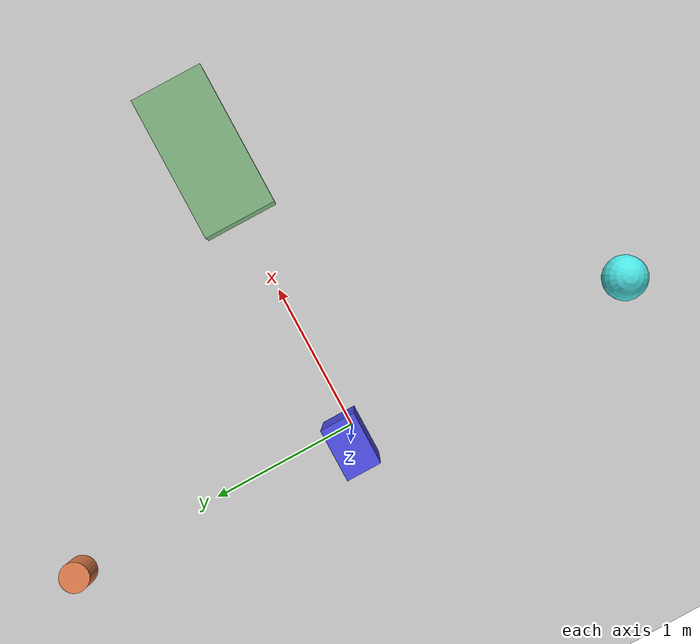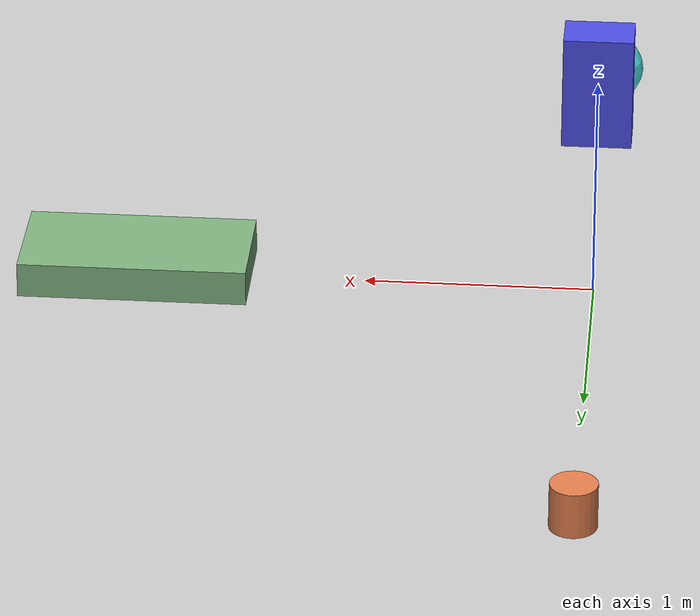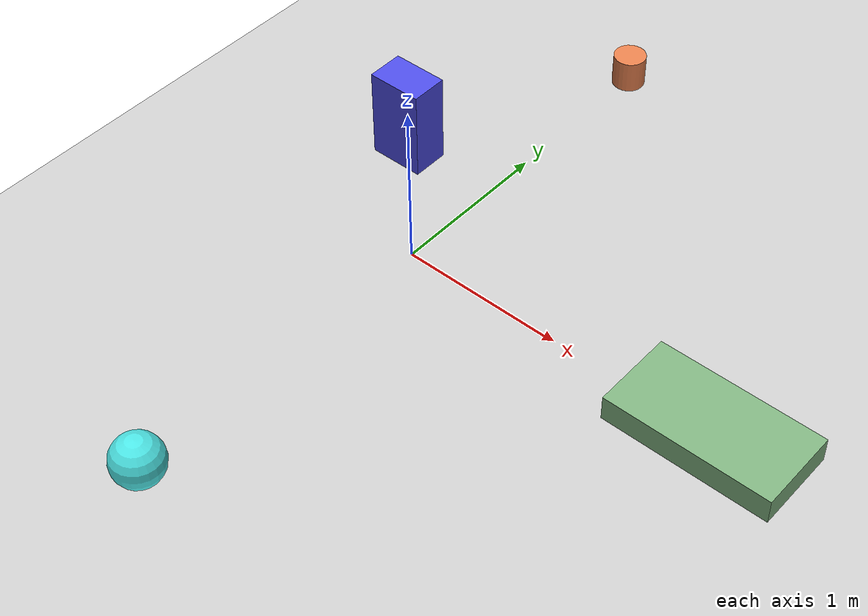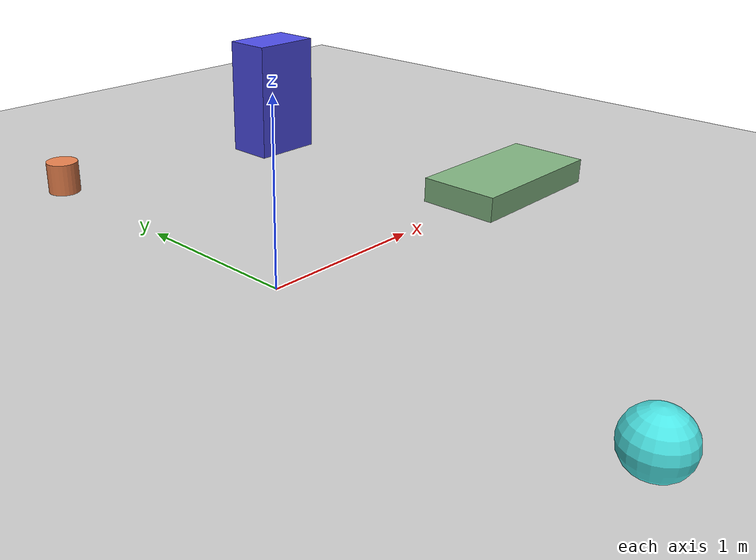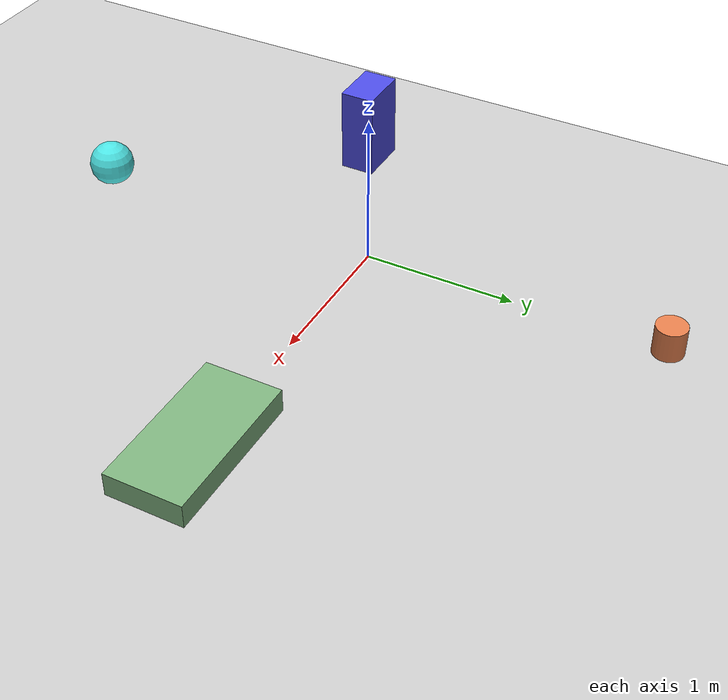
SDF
<sdf version="1.7">
 <world name="humanoid_validation">
  <include><uri>model://ground_plane</uri></include>
  <include><uri>model://sun</uri></include>
  <physics type="ode">
   <gravity>0 0 -9.81</gravity>
   <max_step_size>0.001</max_step_size>
   <real_time_factor>1.0</real_time_factor>
   <real_time_update_rate>1000</real_time_update_rate>
  </physics>
  <model name="validation_steps">
   <pose>2 0 0 0 0 0</pose>
   <link name="link">
    <inertial>
     <mass>5.0</mass>
     <inertia><ixx>0.5</ixx><ixy>0.0</ixy><ixz>0.0</ixz><iyy>0.5</iyy><iyz>0.0</iyz><izz>0.5</izz></inertia>
    </inertial>
    <visual name="visual">
     <geometry><box><size>1.0 0.5 0.3</size></box></geometry>
     <material>
      <ambient>0.4 0.6 0.4 1</ambient>
      <diffuse>0.5 0.7 0.5 1</diffuse>
      <specular>0.1 0.1 0.1 1</specular>
     </material>
    </visual>
    <collision name="collision"><geometry><box><size>1.0 0.5 0.3</size></box></geometry></collision>
   </link>
  </model>
  <model name="obstacle_1">
   <pose>0 2 0.1 0 0 0</pose>
   <link name="link">
    <inertial>
     <mass>0.5</mass>
     <inertia><ixx>0.01</ixx><ixy>0.0</ixy><ixz>0.0</ixz><iyy>0.01</iyy><iyz>0.0</iyz><izz>0.01</izz></inertia>
    </inertial>
    <visual name="visual">
     <geometry><cylinder><radius>0.1</radius><length>0.2</length></cylinder></geometry>
     <material>
      <ambient>0.8 0.4 0.2 1</ambient>
      <diffuse>0.9 0.5 0.3 1</diffuse>
      <specular>0.2 0.1 0.1 1</specular>
     </material>
    </visual>
    <collision name="collision">
     <geometry><cylinder><radius>0.1</radius><length>0.2</length></cylinder></geometry>
    </collision>
   </link>
  </model>
  <model name="obstacle_2">
   <pose>0 -2 0.1 0 0 0</pose>
   <link name="link">
    <inertial>
     <mass>0.5</mass>
     <inertia><ixx>0.01</ixx><ixy>0.0</ixy><ixz>0.0</ixz><iyy>0.01</iyy><iyz>0.0</iyz><izz>0.01</izz></inertia>
    </inertial>
    <visual name="visual">
     <geometry><sphere><radius>0.15</radius></sphere></geometry>
     <material>
      <ambient>0.2 0.8 0.8 1</ambient>
      <diffuse>0.3 0.9 0.9 1</diffuse>
      <specular>0.1 0.2 0.2 1</specular>
     </material>
    </visual>
    <collision name="collision"><geometry><sphere><radius>0.15</radius></sphere></geometry></collision>
   </link>
  </model>
  <include><uri>model://sensor_equipped_robot</uri><pose>0 0 1 0 0 0</pose></include>
  <light name="validation_light_1" type="point">
   <pose>3 3 5 0 0 0</pose>
   <diffuse>0.5 0.5 0.5 1</diffuse>
   <specular>0.5 0.5 0.5 1</specular>
   <attenuation>
    <range>20</range>
    <constant>0.9</constant>
    <linear>0.01</linear>
    <quadratic>0.001</quadratic>
   </attenuation>
  </light>
  <light name="validation_light_2" type="point">
   <pose>-3 -3 5 0 0 0</pose>
   <diffuse>0.5 0.5 0.5 1</diffuse>
   <specular>0.5 0.5 0.5 1</specular>
   <attenuation>
    <range>20</range>
    <constant>0.9</constant>
    <linear>0.01</linear>
    <quadratic>0.001</quadratic>
   </attenuation>
  </light>
 </world>
</sdf>

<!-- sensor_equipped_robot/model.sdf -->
<sdf version="1.7">
  <model name="sensor_equipped_robot">
    <pose>0 0 1 0 0 0</pose>

    <!-- Main body/chest link with sensors -->
    <link name="base_link">
      <inertial>
        <mass>5.0</mass>
        <inertia>
          <ixx>0.1</ixx>
          <ixy>0.0</ixy>
          <ixz>0.0</ixz>
          <iyy>0.1</iyy>
          <iyz>0.0</iyz>
          <izz>0.1</izz>
        </inertia>
      </inertial>

      <visual name="visual">
        <geometry>
          <box>
            <size>0.3 0.2 0.5</size>
          </box>
        </geometry>
        <material>
          <ambient>0.2 0.2 0.8 1</ambient>
          <diffuse>0.3 0.3 0.9 1</diffuse>
          <specular>0.1 0.1 0.1 1</specular>
        </material>
      </visual>

      <collision name="collision">
        <geometry>
          <box>
            <size>0.3 0.2 0.5</size>
          </box>
        </geometry>
      </collision>

      <!-- IMU Sensor -->
      <sensor name="imu_sensor" type="imu">
        <always_on>true</always_on>
        <update_rate>100</update_rate>
        <visualize>false</visualize>
        <topic>imu/data</topic>
        <plugin filename="libgazebo_ros_imu.so" name="imu_plugin">
          <topicName>imu/data</topicName>
          <bodyName>base_link</bodyName>
          <serviceName>imu/service</serviceName>
          <gaussianNoise>0.001</gaussianNoise>
          <updateRateHZ>100.0</updateRateHZ>
        </plugin>
      </sensor>
    </link>

    <!-- Head link with camera -->
    <link name="head">
      <inertial>
        <mass>1.0</mass>
        <inertia>
          <ixx>0.01</ixx>
          <ixy>0.0</ixy>
          <ixz>0.0</ixz>
          <iyy>0.01</iyy>
          <iyz>0.0</iyz>
          <izz>0.01</izz>
        </inertia>
      </inertial>

      <visual name="visual">
        <geometry>
          <sphere>
            <radius>0.1</radius>
          </sphere>
        </geometry>
        <material>
          <ambient>0.8 0.8 0.8 1</ambient>
          <diffuse>0.9 0.9 0.9 1</diffuse>
          <specular>0.2 0.2 0.2 1</specular>
        </material>
      </visual>

      <collision name="collision">
        <geometry>
          <sphere>
            <radius>0.1</radius>
          </sphere>
        </geometry>
      </collision>

      <!-- Depth Camera Sensor -->
      <sensor name="depth_camera" type="depth">
        <always_on>true</always_on>
        <update_rate>15</update_rate>
        <visualize>true</visualize>
        <topic>depth_camera</topic>
        <camera name="depth_cam">
          <horizontal_fov>1.047</horizontal_fov>
          <image>
            <width>640</width>
            <height>480</height>
            <format>R8G8B8</format>
          </image>
          <clip>
            <near>0.1</near>
            <far>10.0</far>
          </clip>
        </camera>
        <plugin filename="libgazebo_ros_openni_kinect.so" name="camera_controller">
          <alwaysOn>true</alwaysOn>
          <updateRate>15.0</updateRate>
          <topicName>depth_camera/image_raw</topicName>
          <depthImageTopicName>depth_camera/depth/image_raw</depthImageTopicName>
          <cameraInfoTopicName>depth_camera/camera_info</cameraInfoTopicName>
          <frameName>depth_camera_frame</frameName>
          <baseline>0.1</baseline>
          <distortion_k1>0.0</distortion_k1>
          <distortion_k2>0.0</distortion_k2>
          <distortion_k3>0.0</distortion_k3>
          <distortion_t1>0.0</distortion_t1>
          <distortion_t2>0.0</distortion_t2>
          <pointCloudCutoff>0.1</pointCloudCutoff>
          <pointCloudCutoffMax>3.0</pointCloudCutoffMax>
          <CxPrime>0.0</CxPrime>
          <Cx>0.0</Cx>
          <Cy>0.0</Cy>
          <focalLength>0.0</focalLength>
          <hackBaseline>0.0</hackBaseline>
        </plugin>
      </sensor>
    </link>

    <!-- Joint connecting head to body -->
    <joint name="neck_joint" type="revolute">
      <parent>base_link</parent>
      <child>head</child>
      <axis>
        <xyz>0 0 1</xyz>
        <limit>
          <lower>-1.57</lower>
          <upper>1.57</upper>
          <effort>10.0</effort>
          <velocity>1.0</velocity>
        </limit>
      </axis>
      <pose>0 0 0.4 0 0 0</pose>
    </joint>

    <!-- LiDAR Mount -->
    <link name="lidar_mount">
      <inertial>
        <mass>0.1</mass>
        <inertia>
          <ixx>0.001</ixx>
          <ixy>0.0</ixy>
          <ixz>0.0</ixz>
          <iyy>0.001</iyy>
          <iyz>0.0</iyz>
          <izz>0.001</izz>
        </inertia>
      </inertial>

      <visual name="visual">
        <geometry>
          <cylinder>
            <radius>0.02</radius>
            <length>0.05</length>
          </cylinder>
        </geometry>
        <material>
          <ambient>0.1 0.1 0.1 1</ambient>
          <diffuse>0.2 0.2 0.2 1</diffuse>
          <specular>0.5 0.5 0.5 1</specular>
        </material>
      </visual>

      <collision name="collision">
        <geometry>
          <cylinder>
            <radius>0.02</radius>
            <length>0.05</length>
          </cylinder>
        </geometry>
      </collision>

      <!-- LiDAR Sensor -->
      <sensor name="lidar" type="ray">
        <pose>0 0 0.025 0 0 0</pose>
        <visualize>true</visualize>
        <update_rate>10</update_rate>
        <ray>
          <scan>
            <horizontal>
              <samples>720</samples>
              <resolution>1</resolution>
              <min_angle>-3.14159</min_angle>
              <max_angle>3.14159</max_angle>
            </horizontal>
          </scan>
          <range>
            <min>0.1</min>
            <max>30.0</max>
            <resolution>0.01</resolution>
          </range>
          <noise>
            <type>gaussian</type>
            <mean>0.0</mean>
            <stddev>0.01</stddev>
          </noise>
        </ray>
        <plugin name="lidar_controller" filename="libgazebo_ros_ray_sensor.so">
          <topic_name>/laser_scan</topic_name>
          <frame_name>lidar_link</frame_name>
          <min_range>0.1</min_range>
          <max_range>30.0</max_range>
          <update_rate>10.0</update_rate>
        </plugin>
      </sensor>
    </link>

    <joint name="lidar_joint" type="fixed">
      <parent>base_link</parent>
      <child>lidar_mount</child>
      <pose>0.15 0 0.1 0 0 0</pose>
    </joint>

    <!-- Left leg -->
    <link name="left_thigh">
      <inertial>
        <mass>2.0</mass>
        <inertia>
          <ixx>0.02</ixx>
          <ixy>0.0</ixy>
          <ixz>0.0</ixz>
          <iyy>0.02</iyy>
          <iyz>0.0</iyz>
          <izz>0.005</izz>
        </inertia>
      </inertial>

      <visual name="visual">
        <geometry>
          <cylinder>
            <radius>0.05</radius>
            <length>0.4</length>
          </cylinder>
        </geometry>
        <material>
          <ambient>0.8 0.2 0.2 1</ambient>
          <diffuse>0.9 0.3 0.3 1</diffuse>
          <specular>0.2 0.1 0.1 1</specular>
        </material>
      </visual>

      <collision name="collision">
        <geometry>
          <cylinder>
            <radius>0.05</radius>
            <length>0.4</length>
          </cylinder>
        </geometry>
      </collision>
    </link>

    <joint name="left_hip" type="revolute">
      <parent>base_link</parent>
      <child>left_thigh</child>
      <axis>
        <xyz>0 1 0</xyz>
        <limit>
          <lower>-1.57</lower>
          <upper>1.57</upper>
          <effort>20.0</effort>
          <velocity>2.0</velocity>
        </limit>
      </axis>
      <pose>-0.1 0 -0.25 0 0 0</pose>
    </joint>

    <!-- Right leg -->
    <link name="right_thigh">
      <inertial>
        <mass>2.0</mass>
        <inertia>
          <ixx>0.02</ixx>
          <ixy>0.0</ixy>
          <ixz>0.0</ixz>
          <iyy>0.02</iyy>
          <iyz>0.0</iyz>
          <izz>0.005</izz>
        </inertia>
      </inertial>

      <visual name="visual">
        <geometry>
          <cylinder>
            <radius>0.05</radius>
            <length>0.4</length>
          </cylinder>
        </geometry>
        <material>
          <ambient>0.8 0.2 0.2 1</ambient>
          <diffuse>0.9 0.3 0.3 1</diffuse>
          <specular>0.2 0.1 0.1 1</specular>
        </material>
      </visual>

      <collision name="collision">
        <geometry>
          <cylinder>
            <radius>0.05</radius>
            <length>0.4</length>
          </cylinder>
        </geometry>
      </collision>
    </link>

    <joint name="right_hip" type="revolute">
      <parent>base_link</parent>
      <child>right_thigh</child>
      <axis>
        <xyz>0 1 0</xyz>
        <limit>
          <lower>-1.57</lower>
          <upper>1.57</upper>
          <effort>20.0</effort>
          <velocity>2.0</velocity>
        </limit>
      </axis>
      <pose>0.1 0 -0.25 0 0 0</pose>
    </joint>

    <!-- Physics properties -->
    <static>false</static>
    <allow_auto_disable>true</allow_auto_disable>
  </model>
</sdf>
